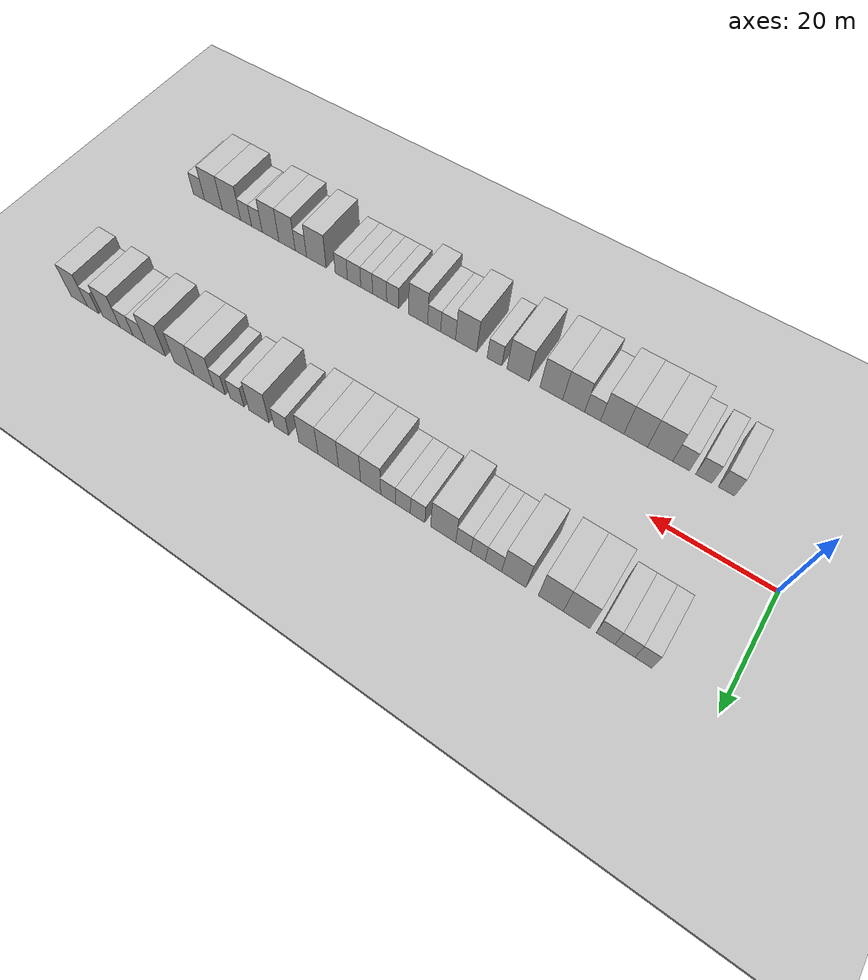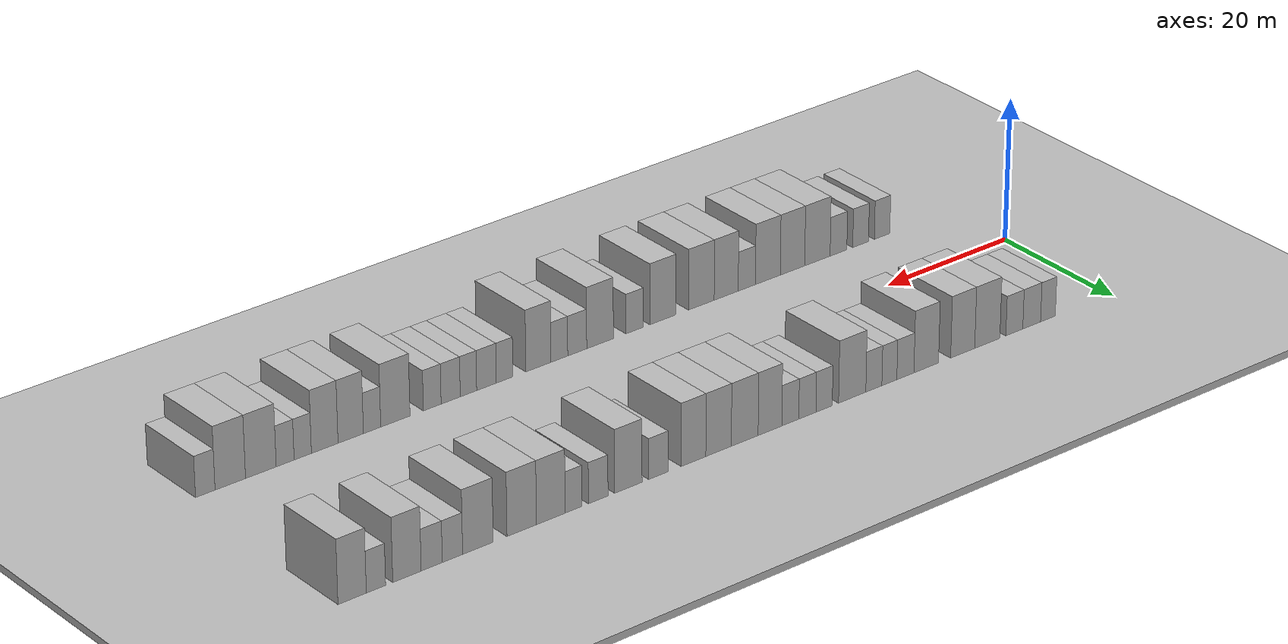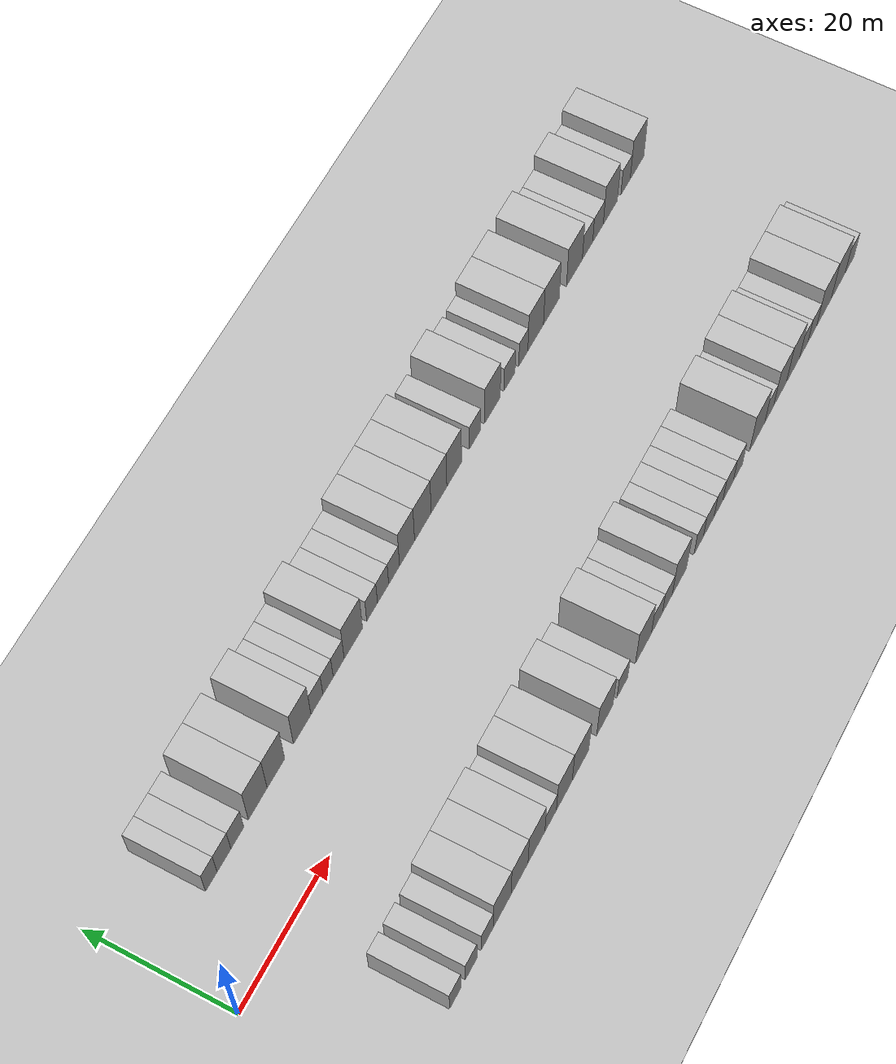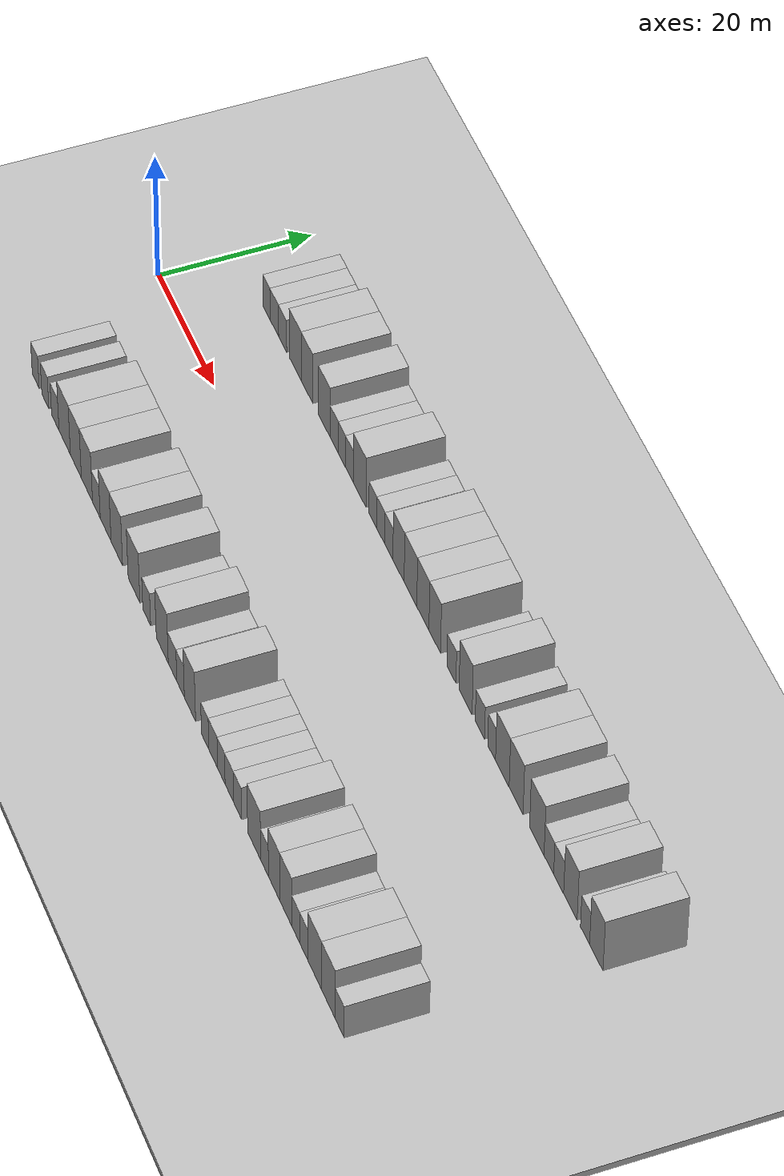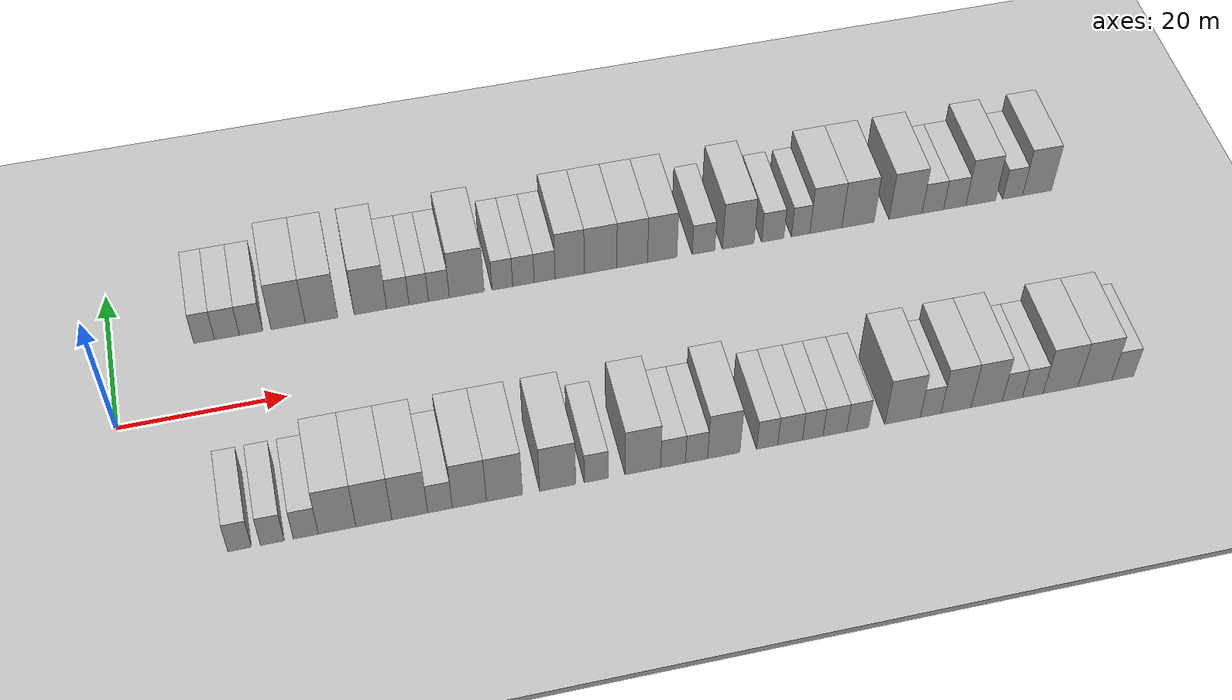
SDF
<sdf version="1.6">
 <world name="default">
  <include><name>ground_plane_1</name><uri>model://HANNAS_ground_plane</uri></include>
  <include>
   <name>ground_plane_2</name>
   <uri>model://HANNAS_ground_plane</uri>
   <pose>100 0 0  0 0 0</pose>
  </include>
  <model name="building_1">
   <static>1</static>
   <pose>11.2514 15.0000 0 0.000000 0.000000 1.570796</pose>
   <link name="link">
    <pose>0 0 3.00 0 0 0</pose>
    <collision name="collision"><geometry><box><size>10.0000 2.5029 6.0000</size></box></geometry></collision>
    <visual name="visual">
     <cast_shadows>0</cast_shadows>
     <geometry><box><size>10.0000 2.5029 6.0000</size></box></geometry>
     <material>
      <script>
       <uri>model://HANNAS_wall/materials/scripts</uri>
       <uri>model://HANNAS_wall/materials/textures</uri>
       <name>vrc/HANNAS_wall</name>
      </script>
     </material>
    </visual>
   </link>
  </model>
  <model name="building_2">
   <static>1</static>
   <pose>14.0023 15.0000 0 0.000000 0.000000 1.570796</pose>
   <link name="link">
    <pose>0 0 3.00 0 0 0</pose>
    <collision name="collision"><geometry><box><size>10.0000 2.9989 6.0000</size></box></geometry></collision>
    <visual name="visual">
     <cast_shadows>0</cast_shadows>
     <geometry><box><size>10.0000 2.9989 6.0000</size></box></geometry>
     <material>
      <script>
       <uri>model://HANNAS_wall/materials/scripts</uri>
       <uri>model://HANNAS_wall/materials/textures</uri>
       <name>vrc/HANNAS_wall</name>
      </script>
     </material>
    </visual>
   </link>
  </model>
  <model name="building_3">
   <static>1</static>
   <pose>16.9239 15.0000 0 0.000000 0.000000 1.570796</pose>
   <link name="link">
    <pose>0 0 3.00 0 0 0</pose>
    <collision name="collision"><geometry><box><size>10.0000 2.8441 6.0000</size></box></geometry></collision>
    <visual name="visual">
     <cast_shadows>0</cast_shadows>
     <geometry><box><size>10.0000 2.8441 6.0000</size></box></geometry>
     <material>
      <script>
       <uri>model://HANNAS_wall/materials/scripts</uri>
       <uri>model://HANNAS_wall/materials/textures</uri>
       <name>vrc/HANNAS_wall</name>
      </script>
     </material>
    </visual>
   </link>
  </model>
  <model name="building_4">
   <static>1</static>
   <pose>21.4435 15.0000 0 0.000000 0.000000 1.570796</pose>
   <link name="link">
    <pose>0 0 4.50 0 0 0</pose>
    <collision name="collision"><geometry><box><size>10.0000 4.1951 9.0000</size></box></geometry></collision>
    <visual name="visual">
     <cast_shadows>0</cast_shadows>
     <geometry><box><size>10.0000 4.1951 9.0000</size></box></geometry>
     <material>
      <script>
       <uri>model://HANNAS_wall/materials/scripts</uri>
       <uri>model://HANNAS_wall/materials/textures</uri>
       <name>vrc/HANNAS_wall</name>
      </script>
     </material>
    </visual>
   </link>
  </model>
  <model name="building_5">
   <static>1</static>
   <pose>25.5285 15.0000 0 0.000000 0.000000 1.570796</pose>
   <link name="link">
    <pose>0 0 4.50 0 0 0</pose>
    <collision name="collision"><geometry><box><size>10.0000 3.9750 9.0000</size></box></geometry></collision>
    <visual name="visual">
     <cast_shadows>0</cast_shadows>
     <geometry><box><size>10.0000 3.9750 9.0000</size></box></geometry>
     <material>
      <script>
       <uri>model://HANNAS_wall/materials/scripts</uri>
       <uri>model://HANNAS_wall/materials/textures</uri>
       <name>vrc/HANNAS_wall</name>
      </script>
     </material>
    </visual>
   </link>
  </model>
  <model name="building_6">
   <static>1</static>
   <pose>31.5260 15.0000 0 0.000000 0.000000 1.570796</pose>
   <link name="link">
    <pose>0 0 4.50 0 0 0</pose>
    <collision name="collision"><geometry><box><size>10.0000 4.0201 9.0000</size></box></geometry></collision>
    <visual name="visual">
     <cast_shadows>0</cast_shadows>
     <geometry><box><size>10.0000 4.0201 9.0000</size></box></geometry>
     <material>
      <script>
       <uri>model://HANNAS_wall/materials/scripts</uri>
       <uri>model://HANNAS_wall/materials/textures</uri>
       <name>vrc/HANNAS_wall</name>
      </script>
     </material>
    </visual>
   </link>
  </model>
  <model name="building_7">
   <static>1</static>
   <pose>34.9230 15.0000 0 0.000000 0.000000 1.570796</pose>
   <link name="link">
    <pose>0 0 3.00 0 0 0</pose>
    <collision name="collision"><geometry><box><size>10.0000 2.7737 6.0000</size></box></geometry></collision>
    <visual name="visual">
     <cast_shadows>0</cast_shadows>
     <geometry><box><size>10.0000 2.7737 6.0000</size></box></geometry>
     <material>
      <script>
       <uri>model://HANNAS_wall/materials/scripts</uri>
       <uri>model://HANNAS_wall/materials/textures</uri>
       <name>vrc/HANNAS_wall</name>
      </script>
     </material>
    </visual>
   </link>
  </model>
  <model name="building_8">
   <static>1</static>
   <pose>37.5219 15.0000 0 0.000000 0.000000 1.570796</pose>
   <link name="link">
    <pose>0 0 3.00 0 0 0</pose>
    <collision name="collision"><geometry><box><size>10.0000 2.4242 6.0000</size></box></geometry></collision>
    <visual name="visual">
     <cast_shadows>0</cast_shadows>
     <geometry><box><size>10.0000 2.4242 6.0000</size></box></geometry>
     <material>
      <script>
       <uri>model://HANNAS_wall/materials/scripts</uri>
       <uri>model://HANNAS_wall/materials/textures</uri>
       <name>vrc/HANNAS_wall</name>
      </script>
     </material>
    </visual>
   </link>
  </model>
  <model name="building_9">
   <static>1</static>
   <pose>40.0258 15.0000 0 0.000000 0.000000 1.570796</pose>
   <link name="link">
    <pose>0 0 3.00 0 0 0</pose>
    <collision name="collision"><geometry><box><size>10.0000 2.5834 6.0000</size></box></geometry></collision>
    <visual name="visual">
     <cast_shadows>0</cast_shadows>
     <geometry><box><size>10.0000 2.5834 6.0000</size></box></geometry>
     <material>
      <script>
       <uri>model://HANNAS_wall/materials/scripts</uri>
       <uri>model://HANNAS_wall/materials/textures</uri>
       <name>vrc/HANNAS_wall</name>
      </script>
     </material>
    </visual>
   </link>
  </model>
  <model name="building_10">
   <static>1</static>
   <pose>43.4983 15.0000 0 0.000000 0.000000 1.570796</pose>
   <link name="link">
    <pose>0 0 4.50 0 0 0</pose>
    <collision name="collision"><geometry><box><size>10.0000 4.3616 9.0000</size></box></geometry></collision>
    <visual name="visual">
     <cast_shadows>0</cast_shadows>
     <geometry><box><size>10.0000 4.3616 9.0000</size></box></geometry>
     <material>
      <script>
       <uri>model://HANNAS_wall/materials/scripts</uri>
       <uri>model://HANNAS_wall/materials/textures</uri>
       <name>vrc/HANNAS_wall</name>
      </script>
     </material>
    </visual>
   </link>
  </model>
  <model name="building_11">
   <static>1</static>
   <pose>47.9770 15.0000 0 0.000000 0.000000 1.570796</pose>
   <link name="link">
    <pose>0 0 3.00 0 0 0</pose>
    <collision name="collision"><geometry><box><size>10.0000 2.5957 6.0000</size></box></geometry></collision>
    <visual name="visual">
     <cast_shadows>0</cast_shadows>
     <geometry><box><size>10.0000 2.5957 6.0000</size></box></geometry>
     <material>
      <script>
       <uri>model://HANNAS_wall/materials/scripts</uri>
       <uri>model://HANNAS_wall/materials/textures</uri>
       <name>vrc/HANNAS_wall</name>
      </script>
     </material>
    </visual>
   </link>
  </model>
  <model name="building_12">
   <static>1</static>
   <pose>50.6294 15.0000 0 0.000000 0.000000 1.570796</pose>
   <link name="link">
    <pose>0 0 3.00 0 0 0</pose>
    <collision name="collision"><geometry><box><size>10.0000 2.7092 6.0000</size></box></geometry></collision>
    <visual name="visual">
     <cast_shadows>0</cast_shadows>
     <geometry><box><size>10.0000 2.7092 6.0000</size></box></geometry>
     <material>
      <script>
       <uri>model://HANNAS_wall/materials/scripts</uri>
       <uri>model://HANNAS_wall/materials/textures</uri>
       <name>vrc/HANNAS_wall</name>
      </script>
     </material>
    </visual>
   </link>
  </model>
  <model name="building_13">
   <static>1</static>
   <pose>53.3160 15.0000 0 0.000000 0.000000 1.570796</pose>
   <link name="link">
    <pose>0 0 3.00 0 0 0</pose>
    <collision name="collision"><geometry><box><size>10.0000 2.6641 6.0000</size></box></geometry></collision>
    <visual name="visual">
     <cast_shadows>0</cast_shadows>
     <geometry><box><size>10.0000 2.6641 6.0000</size></box></geometry>
     <material>
      <script>
       <uri>model://HANNAS_wall/materials/scripts</uri>
       <uri>model://HANNAS_wall/materials/textures</uri>
       <name>vrc/HANNAS_wall</name>
      </script>
     </material>
    </visual>
   </link>
  </model>
  <model name="building_14">
   <static>1</static>
   <pose>56.5004 15.0000 0 0.000000 0.000000 1.570796</pose>
   <link name="link">
    <pose>0 0 4.50 0 0 0</pose>
    <collision name="collision"><geometry><box><size>10.0000 3.7046 9.0000</size></box></geometry></collision>
    <visual name="visual">
     <cast_shadows>0</cast_shadows>
     <geometry><box><size>10.0000 3.7046 9.0000</size></box></geometry>
     <material>
      <script>
       <uri>model://HANNAS_wall/materials/scripts</uri>
       <uri>model://HANNAS_wall/materials/textures</uri>
       <name>vrc/HANNAS_wall</name>
      </script>
     </material>
    </visual>
   </link>
  </model>
  <model name="building_15">
   <static>1</static>
   <pose>60.4283 15.0000 0 0.000000 0.000000 1.570796</pose>
   <link name="link">
    <pose>0 0 4.50 0 0 0</pose>
    <collision name="collision"><geometry><box><size>10.0000 4.1512 9.0000</size></box></geometry></collision>
    <visual name="visual">
     <cast_shadows>0</cast_shadows>
     <geometry><box><size>10.0000 4.1512 9.0000</size></box></geometry>
     <material>
      <script>
       <uri>model://HANNAS_wall/materials/scripts</uri>
       <uri>model://HANNAS_wall/materials/textures</uri>
       <name>vrc/HANNAS_wall</name>
      </script>
     </material>
    </visual>
   </link>
  </model>
  <model name="building_16">
   <static>1</static>
   <pose>64.4689 15.0000 0 0.000000 0.000000 1.570796</pose>
   <link name="link">
    <pose>0 0 4.50 0 0 0</pose>
    <collision name="collision"><geometry><box><size>10.0000 3.9300 9.0000</size></box></geometry></collision>
    <visual name="visual">
     <cast_shadows>0</cast_shadows>
     <geometry><box><size>10.0000 3.9300 9.0000</size></box></geometry>
     <material>
      <script>
       <uri>model://HANNAS_wall/materials/scripts</uri>
       <uri>model://HANNAS_wall/materials/textures</uri>
       <name>vrc/HANNAS_wall</name>
      </script>
     </material>
    </visual>
   </link>
  </model>
  <model name="building_17">
   <static>1</static>
   <pose>68.3168 15.0000 0 0.000000 0.000000 1.570796</pose>
   <link name="link">
    <pose>0 0 4.50 0 0 0</pose>
    <collision name="collision"><geometry><box><size>10.0000 3.7660 9.0000</size></box></geometry></collision>
    <visual name="visual">
     <cast_shadows>0</cast_shadows>
     <geometry><box><size>10.0000 3.7660 9.0000</size></box></geometry>
     <material>
      <script>
       <uri>model://HANNAS_wall/materials/scripts</uri>
       <uri>model://HANNAS_wall/materials/textures</uri>
       <name>vrc/HANNAS_wall</name>
      </script>
     </material>
    </visual>
   </link>
  </model>
  <model name="building_18">
   <static>1</static>
   <pose>73.6593 15.0000 0 0.000000 0.000000 1.570796</pose>
   <link name="link">
    <pose>0 0 3.00 0 0 0</pose>
    <collision name="collision"><geometry><box><size>10.0000 2.9189 6.0000</size></box></geometry></collision>
    <visual name="visual">
     <cast_shadows>0</cast_shadows>
     <geometry><box><size>10.0000 2.9189 6.0000</size></box></geometry>
     <material>
      <script>
       <uri>model://HANNAS_wall/materials/scripts</uri>
       <uri>model://HANNAS_wall/materials/textures</uri>
       <name>vrc/HANNAS_wall</name>
      </script>
     </material>
    </visual>
   </link>
  </model>
  <model name="building_19">
   <static>1</static>
   <pose>78.1737 15.0000 0 0.000000 0.000000 1.570796</pose>
   <link name="link">
    <pose>0 0 4.50 0 0 0</pose>
    <collision name="collision"><geometry><box><size>10.0000 4.1099 9.0000</size></box></geometry></collision>
    <visual name="visual">
     <cast_shadows>0</cast_shadows>
     <geometry><box><size>10.0000 4.1099 9.0000</size></box></geometry>
     <material>
      <script>
       <uri>model://HANNAS_wall/materials/scripts</uri>
       <uri>model://HANNAS_wall/materials/textures</uri>
       <name>vrc/HANNAS_wall</name>
      </script>
     </material>
    </visual>
   </link>
  </model>
  <model name="building_20">
   <static>1</static>
   <pose>82.6827 15.0000 0 0.000000 0.000000 1.570796</pose>
   <link name="link">
    <pose>0 0 3.00 0 0 0</pose>
    <collision name="collision"><geometry><box><size>10.0000 2.9082 6.0000</size></box></geometry></collision>
    <visual name="visual">
     <cast_shadows>0</cast_shadows>
     <geometry><box><size>10.0000 2.9082 6.0000</size></box></geometry>
     <material>
      <script>
       <uri>model://HANNAS_wall/materials/scripts</uri>
       <uri>model://HANNAS_wall/materials/textures</uri>
       <name>vrc/HANNAS_wall</name>
      </script>
     </material>
    </visual>
   </link>
  </model>
  <model name="building_21">
   <static>1</static>
   <pose>86.3541 15.0000 0 0.000000 0.000000 1.570796</pose>
   <link name="link">
    <pose>0 0 3.00 0 0 0</pose>
    <collision name="collision"><geometry><box><size>10.0000 2.4345 6.0000</size></box></geometry></collision>
    <visual name="visual">
     <cast_shadows>0</cast_shadows>
     <geometry><box><size>10.0000 2.4345 6.0000</size></box></geometry>
     <material>
      <script>
       <uri>model://HANNAS_wall/materials/scripts</uri>
       <uri>model://HANNAS_wall/materials/textures</uri>
       <name>vrc/HANNAS_wall</name>
      </script>
     </material>
    </visual>
   </link>
  </model>
  <model name="building_22">
   <static>1</static>
   <pose>89.6806 15.0000 0 0.000000 0.000000 1.570796</pose>
   <link name="link">
    <pose>0 0 4.50 0 0 0</pose>
    <collision name="collision"><geometry><box><size>10.0000 4.2186 9.0000</size></box></geometry></collision>
    <visual name="visual">
     <cast_shadows>0</cast_shadows>
     <geometry><box><size>10.0000 4.2186 9.0000</size></box></geometry>
     <material>
      <script>
       <uri>model://HANNAS_wall/materials/scripts</uri>
       <uri>model://HANNAS_wall/materials/textures</uri>
       <name>vrc/HANNAS_wall</name>
      </script>
     </material>
    </visual>
   </link>
  </model>
  <model name="building_23">
   <static>1</static>
   <pose>93.9344 15.0000 0 0.000000 0.000000 1.570796</pose>
   <link name="link">
    <pose>0 0 4.50 0 0 0</pose>
    <collision name="collision"><geometry><box><size>10.0000 4.2889 9.0000</size></box></geometry></collision>
    <visual name="visual">
     <cast_shadows>0</cast_shadows>
     <geometry><box><size>10.0000 4.2889 9.0000</size></box></geometry>
     <material>
      <script>
       <uri>model://HANNAS_wall/materials/scripts</uri>
       <uri>model://HANNAS_wall/materials/textures</uri>
       <name>vrc/HANNAS_wall</name>
      </script>
     </material>
    </visual>
   </link>
  </model>
  <model name="building_24">
   <static>1</static>
   <pose>100.2766 15.0000 0 0.000000 0.000000 1.570796</pose>
   <link name="link">
    <pose>0 0 4.50 0 0 0</pose>
    <collision name="collision"><geometry><box><size>10.0000 4.3954 9.0000</size></box></geometry></collision>
    <visual name="visual">
     <cast_shadows>0</cast_shadows>
     <geometry><box><size>10.0000 4.3954 9.0000</size></box></geometry>
     <material>
      <script>
       <uri>model://HANNAS_wall/materials/scripts</uri>
       <uri>model://HANNAS_wall/materials/textures</uri>
       <name>vrc/HANNAS_wall</name>
      </script>
     </material>
    </visual>
   </link>
  </model>
  <model name="building_25">
   <static>1</static>
   <pose>103.9257 15.0000 0 0.000000 0.000000 1.570796</pose>
   <link name="link">
    <pose>0 0 3.00 0 0 0</pose>
    <collision name="collision"><geometry><box><size>10.0000 2.9029 6.0000</size></box></geometry></collision>
    <visual name="visual">
     <cast_shadows>0</cast_shadows>
     <geometry><box><size>10.0000 2.9029 6.0000</size></box></geometry>
     <material>
      <script>
       <uri>model://HANNAS_wall/materials/scripts</uri>
       <uri>model://HANNAS_wall/materials/textures</uri>
       <name>vrc/HANNAS_wall</name>
      </script>
     </material>
    </visual>
   </link>
  </model>
  <model name="building_26">
   <static>1</static>
   <pose>106.8754 15.0000 0 0.000000 0.000000 1.570796</pose>
   <link name="link">
    <pose>0 0 3.00 0 0 0</pose>
    <collision name="collision"><geometry><box><size>10.0000 2.9966 6.0000</size></box></geometry></collision>
    <visual name="visual">
     <cast_shadows>0</cast_shadows>
     <geometry><box><size>10.0000 2.9966 6.0000</size></box></geometry>
     <material>
      <script>
       <uri>model://HANNAS_wall/materials/scripts</uri>
       <uri>model://HANNAS_wall/materials/textures</uri>
       <name>vrc/HANNAS_wall</name>
      </script>
     </material>
    </visual>
   </link>
  </model>
  <model name="building_27">
   <static>1</static>
   <pose>110.3782 15.0000 0 0.000000 0.000000 1.570796</pose>
   <link name="link">
    <pose>0 0 4.50 0 0 0</pose>
    <collision name="collision"><geometry><box><size>10.0000 4.0090 9.0000</size></box></geometry></collision>
    <visual name="visual">
     <cast_shadows>0</cast_shadows>
     <geometry><box><size>10.0000 4.0090 9.0000</size></box></geometry>
     <material>
      <script>
       <uri>model://HANNAS_wall/materials/scripts</uri>
       <uri>model://HANNAS_wall/materials/textures</uri>
       <name>vrc/HANNAS_wall</name>
      </script>
     </material>
    </visual>
   </link>
  </model>
  <model name="building_28">
   <static>1</static>
   <pose>114.7304 15.0000 0 0.000000 0.000000 1.570796</pose>
   <link name="link">
    <pose>0 0 3.00 0 0 0</pose>
    <collision name="collision"><geometry><box><size>10.0000 2.6954 6.0000</size></box></geometry></collision>
    <visual name="visual">
     <cast_shadows>0</cast_shadows>
     <geometry><box><size>10.0000 2.6954 6.0000</size></box></geometry>
     <material>
      <script>
       <uri>model://HANNAS_wall/materials/scripts</uri>
       <uri>model://HANNAS_wall/materials/textures</uri>
       <name>vrc/HANNAS_wall</name>
      </script>
     </material>
    </visual>
   </link>
  </model>
  <model name="building_29">
   <static>1</static>
   <pose>118.0491 15.0000 0 0.000000 0.000000 1.570796</pose>
   <link name="link">
    <pose>0 0 4.50 0 0 0</pose>
    <collision name="collision"><geometry><box><size>10.0000 3.9418 9.0000</size></box></geometry></collision>
    <visual name="visual">
     <cast_shadows>0</cast_shadows>
     <geometry><box><size>10.0000 3.9418 9.0000</size></box></geometry>
     <material>
      <script>
       <uri>model://HANNAS_wall/materials/scripts</uri>
       <uri>model://HANNAS_wall/materials/textures</uri>
       <name>vrc/HANNAS_wall</name>
      </script>
     </material>
    </visual>
   </link>
  </model>
  <model name="building_61">
   <static>1</static>
   <pose>12.3167 -15.0000 0 0.000000 0.000000 1.570796</pose>
   <link name="link">
    <pose>0 0 3.00 0 0 0</pose>
    <collision name="collision"><geometry><box><size>10.0000 2.6335 6.0000</size></box></geometry></collision>
    <visual name="visual">
     <cast_shadows>0</cast_shadows>
     <geometry><box><size>10.0000 2.6335 6.0000</size></box></geometry>
     <material>
      <script>
       <uri>model://HANNAS_wall/materials/scripts</uri>
       <uri>model://HANNAS_wall/materials/textures</uri>
       <name>vrc/HANNAS_wall</name>
      </script>
     </material>
    </visual>
   </link>
  </model>
  <model name="building_62">
   <static>1</static>
   <pose>15.9717 -15.0000 0 0.000000 0.000000 1.570796</pose>
   <link name="link">
    <pose>0 0 3.00 0 0 0</pose>
    <collision name="collision"><geometry><box><size>10.0000 2.6764 6.0000</size></box></geometry></collision>
    <visual name="visual">
     <cast_shadows>0</cast_shadows>
     <geometry><box><size>10.0000 2.6764 6.0000</size></box></geometry>
     <material>
      <script>
       <uri>model://HANNAS_wall/materials/scripts</uri>
       <uri>model://HANNAS_wall/materials/textures</uri>
       <name>vrc/HANNAS_wall</name>
      </script>
     </material>
    </visual>
   </link>
  </model>
  <model name="building_63">
   <static>1</static>
   <pose>19.7191 -15.0000 0 0.000000 0.000000 1.570796</pose>
   <link name="link">
    <pose>0 0 3.00 0 0 0</pose>
    <collision name="collision"><geometry><box><size>10.0000 2.8184 6.0000</size></box></geometry></collision>
    <visual name="visual">
     <cast_shadows>0</cast_shadows>
     <geometry><box><size>10.0000 2.8184 6.0000</size></box></geometry>
     <material>
      <script>
       <uri>model://HANNAS_wall/materials/scripts</uri>
       <uri>model://HANNAS_wall/materials/textures</uri>
       <name>vrc/HANNAS_wall</name>
      </script>
     </material>
    </visual>
   </link>
  </model>
  <model name="building_64">
   <static>1</static>
   <pose>23.2573 -15.0000 0 0.000000 0.000000 1.570796</pose>
   <link name="link">
    <pose>0 0 4.50 0 0 0</pose>
    <collision name="collision"><geometry><box><size>10.0000 4.2580 9.0000</size></box></geometry></collision>
    <visual name="visual">
     <cast_shadows>0</cast_shadows>
     <geometry><box><size>10.0000 4.2580 9.0000</size></box></geometry>
     <material>
      <script>
       <uri>model://HANNAS_wall/materials/scripts</uri>
       <uri>model://HANNAS_wall/materials/textures</uri>
       <name>vrc/HANNAS_wall</name>
      </script>
     </material>
    </visual>
   </link>
  </model>
  <model name="building_65">
   <static>1</static>
   <pose>27.4177 -15.0000 0 0.000000 0.000000 1.570796</pose>
   <link name="link">
    <pose>0 0 4.50 0 0 0</pose>
    <collision name="collision"><geometry><box><size>10.0000 4.0628 9.0000</size></box></geometry></collision>
    <visual name="visual">
     <cast_shadows>0</cast_shadows>
     <geometry><box><size>10.0000 4.0628 9.0000</size></box></geometry>
     <material>
      <script>
       <uri>model://HANNAS_wall/materials/scripts</uri>
       <uri>model://HANNAS_wall/materials/textures</uri>
       <name>vrc/HANNAS_wall</name>
      </script>
     </material>
    </visual>
   </link>
  </model>
  <model name="building_66">
   <static>1</static>
   <pose>31.5006 -15.0000 0 0.000000 0.000000 1.570796</pose>
   <link name="link">
    <pose>0 0 4.50 0 0 0</pose>
    <collision name="collision"><geometry><box><size>10.0000 4.1030 9.0000</size></box></geometry></collision>
    <visual name="visual">
     <cast_shadows>0</cast_shadows>
     <geometry><box><size>10.0000 4.1030 9.0000</size></box></geometry>
     <material>
      <script>
       <uri>model://HANNAS_wall/materials/scripts</uri>
       <uri>model://HANNAS_wall/materials/textures</uri>
       <name>vrc/HANNAS_wall</name>
      </script>
     </material>
    </visual>
   </link>
  </model>
  <model name="building_67">
   <static>1</static>
   <pose>34.9630 -15.0000 0 0.000000 0.000000 1.570796</pose>
   <link name="link">
    <pose>0 0 3.00 0 0 0</pose>
    <collision name="collision"><geometry><box><size>10.0000 2.8217 6.0000</size></box></geometry></collision>
    <visual name="visual">
     <cast_shadows>0</cast_shadows>
     <geometry><box><size>10.0000 2.8217 6.0000</size></box></geometry>
     <material>
      <script>
       <uri>model://HANNAS_wall/materials/scripts</uri>
       <uri>model://HANNAS_wall/materials/textures</uri>
       <name>vrc/HANNAS_wall</name>
      </script>
     </material>
    </visual>
   </link>
  </model>
  <model name="building_68">
   <static>1</static>
   <pose>38.3397 -15.0000 0 0.000000 0.000000 1.570796</pose>
   <link name="link">
    <pose>0 0 4.50 0 0 0</pose>
    <collision name="collision"><geometry><box><size>10.0000 3.9317 9.0000</size></box></geometry></collision>
    <visual name="visual">
     <cast_shadows>0</cast_shadows>
     <geometry><box><size>10.0000 3.9317 9.0000</size></box></geometry>
     <material>
      <script>
       <uri>model://HANNAS_wall/materials/scripts</uri>
       <uri>model://HANNAS_wall/materials/textures</uri>
       <name>vrc/HANNAS_wall</name>
      </script>
     </material>
    </visual>
   </link>
  </model>
  <model name="building_69">
   <static>1</static>
   <pose>42.3876 -15.0000 0 0.000000 0.000000 1.570796</pose>
   <link name="link">
    <pose>0 0 4.50 0 0 0</pose>
    <collision name="collision"><geometry><box><size>10.0000 4.1641 9.0000</size></box></geometry></collision>
    <visual name="visual">
     <cast_shadows>0</cast_shadows>
     <geometry><box><size>10.0000 4.1641 9.0000</size></box></geometry>
     <material>
      <script>
       <uri>model://HANNAS_wall/materials/scripts</uri>
       <uri>model://HANNAS_wall/materials/textures</uri>
       <name>vrc/HANNAS_wall</name>
      </script>
     </material>
    </visual>
   </link>
  </model>
  <model name="building_70">
   <static>1</static>
   <pose>48.5709 -15.0000 0 0.000000 0.000000 1.570796</pose>
   <link name="link">
    <pose>0 0 4.50 0 0 0</pose>
    <collision name="collision"><geometry><box><size>10.0000 4.2025 9.0000</size></box></geometry></collision>
    <visual name="visual">
     <cast_shadows>0</cast_shadows>
     <geometry><box><size>10.0000 4.2025 9.0000</size></box></geometry>
     <material>
      <script>
       <uri>model://HANNAS_wall/materials/scripts</uri>
       <uri>model://HANNAS_wall/materials/textures</uri>
       <name>vrc/HANNAS_wall</name>
      </script>
     </material>
    </visual>
   </link>
  </model>
  <model name="building_71">
   <static>1</static>
   <pose>53.0681 -15.0000 0 0.000000 0.000000 1.570796</pose>
   <link name="link">
    <pose>0 0 3.00 0 0 0</pose>
    <collision name="collision"><geometry><box><size>10.0000 2.7918 6.0000</size></box></geometry></collision>
    <visual name="visual">
     <cast_shadows>0</cast_shadows>
     <geometry><box><size>10.0000 2.7918 6.0000</size></box></geometry>
     <material>
      <script>
       <uri>model://HANNAS_wall/materials/scripts</uri>
       <uri>model://HANNAS_wall/materials/textures</uri>
       <name>vrc/HANNAS_wall</name>
      </script>
     </material>
    </visual>
   </link>
  </model>
  <model name="building_72">
   <static>1</static>
   <pose>58.5598 -15.0000 0 0.000000 0.000000 1.570796</pose>
   <link name="link">
    <pose>0 0 4.50 0 0 0</pose>
    <collision name="collision"><geometry><box><size>10.0000 4.1917 9.0000</size></box></geometry></collision>
    <visual name="visual">
     <cast_shadows>0</cast_shadows>
     <geometry><box><size>10.0000 4.1917 9.0000</size></box></geometry>
     <material>
      <script>
       <uri>model://HANNAS_wall/materials/scripts</uri>
       <uri>model://HANNAS_wall/materials/textures</uri>
       <name>vrc/HANNAS_wall</name>
      </script>
     </material>
    </visual>
   </link>
  </model>
  <model name="building_73">
   <static>1</static>
   <pose>62.1411 -15.0000 0 0.000000 0.000000 1.570796</pose>
   <link name="link">
    <pose>0 0 3.00 0 0 0</pose>
    <collision name="collision"><geometry><box><size>10.0000 2.9708 6.0000</size></box></geometry></collision>
    <visual name="visual">
     <cast_shadows>0</cast_shadows>
     <geometry><box><size>10.0000 2.9708 6.0000</size></box></geometry>
     <material>
      <script>
       <uri>model://HANNAS_wall/materials/scripts</uri>
       <uri>model://HANNAS_wall/materials/textures</uri>
       <name>vrc/HANNAS_wall</name>
      </script>
     </material>
    </visual>
   </link>
  </model>
  <model name="building_74">
   <static>1</static>
   <pose>64.9349 -15.0000 0 0.000000 0.000000 1.570796</pose>
   <link name="link">
    <pose>0 0 3.00 0 0 0</pose>
    <collision name="collision"><geometry><box><size>10.0000 2.6167 6.0000</size></box></geometry></collision>
    <visual name="visual">
     <cast_shadows>0</cast_shadows>
     <geometry><box><size>10.0000 2.6167 6.0000</size></box></geometry>
     <material>
      <script>
       <uri>model://HANNAS_wall/materials/scripts</uri>
       <uri>model://HANNAS_wall/materials/textures</uri>
       <name>vrc/HANNAS_wall</name>
      </script>
     </material>
    </visual>
   </link>
  </model>
  <model name="building_75">
   <static>1</static>
   <pose>68.1829 -15.0000 0 0.000000 0.000000 1.570796</pose>
   <link name="link">
    <pose>0 0 4.50 0 0 0</pose>
    <collision name="collision"><geometry><box><size>10.0000 3.8792 9.0000</size></box></geometry></collision>
    <visual name="visual">
     <cast_shadows>0</cast_shadows>
     <geometry><box><size>10.0000 3.8792 9.0000</size></box></geometry>
     <material>
      <script>
       <uri>model://HANNAS_wall/materials/scripts</uri>
       <uri>model://HANNAS_wall/materials/textures</uri>
       <name>vrc/HANNAS_wall</name>
      </script>
     </material>
    </visual>
   </link>
  </model>
  <model name="building_76">
   <static>1</static>
   <pose>73.3926 -15.0000 0 0.000000 0.000000 1.570796</pose>
   <link name="link">
    <pose>0 0 3.00 0 0 0</pose>
    <collision name="collision"><geometry><box><size>10.0000 2.5403 6.0000</size></box></geometry></collision>
    <visual name="visual">
     <cast_shadows>0</cast_shadows>
     <geometry><box><size>10.0000 2.5403 6.0000</size></box></geometry>
     <material>
      <script>
       <uri>model://HANNAS_wall/materials/scripts</uri>
       <uri>model://HANNAS_wall/materials/textures</uri>
       <name>vrc/HANNAS_wall</name>
      </script>
     </material>
    </visual>
   </link>
  </model>
  <model name="building_77">
   <static>1</static>
   <pose>76.1578 -15.0000 0 0.000000 0.000000 1.570796</pose>
   <link name="link">
    <pose>0 0 3.00 0 0 0</pose>
    <collision name="collision"><geometry><box><size>10.0000 2.9901 6.0000</size></box></geometry></collision>
    <visual name="visual">
     <cast_shadows>0</cast_shadows>
     <geometry><box><size>10.0000 2.9901 6.0000</size></box></geometry>
     <material>
      <script>
       <uri>model://HANNAS_wall/materials/scripts</uri>
       <uri>model://HANNAS_wall/materials/textures</uri>
       <name>vrc/HANNAS_wall</name>
      </script>
     </material>
    </visual>
   </link>
  </model>
  <model name="building_78">
   <static>1</static>
   <pose>78.8990 -15.0000 0 0.000000 0.000000 1.570796</pose>
   <link name="link">
    <pose>0 0 3.00 0 0 0</pose>
    <collision name="collision"><geometry><box><size>10.0000 2.4922 6.0000</size></box></geometry></collision>
    <visual name="visual">
     <cast_shadows>0</cast_shadows>
     <geometry><box><size>10.0000 2.4922 6.0000</size></box></geometry>
     <material>
      <script>
       <uri>model://HANNAS_wall/materials/scripts</uri>
       <uri>model://HANNAS_wall/materials/textures</uri>
       <name>vrc/HANNAS_wall</name>
      </script>
     </material>
    </visual>
   </link>
  </model>
  <model name="building_79">
   <static>1</static>
   <pose>81.5900 -15.0000 0 0.000000 0.000000 1.570796</pose>
   <link name="link">
    <pose>0 0 3.00 0 0 0</pose>
    <collision name="collision"><geometry><box><size>10.0000 2.8898 6.0000</size></box></geometry></collision>
    <visual name="visual">
     <cast_shadows>0</cast_shadows>
     <geometry><box><size>10.0000 2.8898 6.0000</size></box></geometry>
     <material>
      <script>
       <uri>model://HANNAS_wall/materials/scripts</uri>
       <uri>model://HANNAS_wall/materials/textures</uri>
       <name>vrc/HANNAS_wall</name>
      </script>
     </material>
    </visual>
   </link>
  </model>
  <model name="building_80">
   <static>1</static>
   <pose>84.3654 -15.0000 0 0.000000 0.000000 1.570796</pose>
   <link name="link">
    <pose>0 0 3.00 0 0 0</pose>
    <collision name="collision"><geometry><box><size>10.0000 2.6610 6.0000</size></box></geometry></collision>
    <visual name="visual">
     <cast_shadows>0</cast_shadows>
     <geometry><box><size>10.0000 2.6610 6.0000</size></box></geometry>
     <material>
      <script>
       <uri>model://HANNAS_wall/materials/scripts</uri>
       <uri>model://HANNAS_wall/materials/textures</uri>
       <name>vrc/HANNAS_wall</name>
      </script>
     </material>
    </visual>
   </link>
  </model>
  <model name="building_81">
   <static>1</static>
   <pose>89.8745 -15.0000 0 0.000000 0.000000 1.570796</pose>
   <link name="link">
    <pose>0 0 4.50 0 0 0</pose>
    <collision name="collision"><geometry><box><size>10.0000 4.3572 9.0000</size></box></geometry></collision>
    <visual name="visual">
     <cast_shadows>0</cast_shadows>
     <geometry><box><size>10.0000 4.3572 9.0000</size></box></geometry>
     <material>
      <script>
       <uri>model://HANNAS_wall/materials/scripts</uri>
       <uri>model://HANNAS_wall/materials/textures</uri>
       <name>vrc/HANNAS_wall</name>
      </script>
     </material>
    </visual>
   </link>
  </model>
  <model name="building_82">
   <static>1</static>
   <pose>93.3296 -15.0000 0 0.000000 0.000000 1.570796</pose>
   <link name="link">
    <pose>0 0 3.00 0 0 0</pose>
    <collision name="collision"><geometry><box><size>10.0000 2.5531 6.0000</size></box></geometry></collision>
    <visual name="visual">
     <cast_shadows>0</cast_shadows>
     <geometry><box><size>10.0000 2.5531 6.0000</size></box></geometry>
     <material>
      <script>
       <uri>model://HANNAS_wall/materials/scripts</uri>
       <uri>model://HANNAS_wall/materials/textures</uri>
       <name>vrc/HANNAS_wall</name>
      </script>
     </material>
    </visual>
   </link>
  </model>
  <model name="building_83">
   <static>1</static>
   <pose>96.4717 -15.0000 0 0.000000 0.000000 1.570796</pose>
   <link name="link">
    <pose>0 0 4.50 0 0 0</pose>
    <collision name="collision"><geometry><box><size>10.0000 3.7310 9.0000</size></box></geometry></collision>
    <visual name="visual">
     <cast_shadows>0</cast_shadows>
     <geometry><box><size>10.0000 3.7310 9.0000</size></box></geometry>
     <material>
      <script>
       <uri>model://HANNAS_wall/materials/scripts</uri>
       <uri>model://HANNAS_wall/materials/textures</uri>
       <name>vrc/HANNAS_wall</name>
      </script>
     </material>
    </visual>
   </link>
  </model>
  <model name="building_84">
   <static>1</static>
   <pose>100.2781 -15.0000 0 0.000000 0.000000 1.570796</pose>
   <link name="link">
    <pose>0 0 4.50 0 0 0</pose>
    <collision name="collision"><geometry><box><size>10.0000 3.8820 9.0000</size></box></geometry></collision>
    <visual name="visual">
     <cast_shadows>0</cast_shadows>
     <geometry><box><size>10.0000 3.8820 9.0000</size></box></geometry>
     <material>
      <script>
       <uri>model://HANNAS_wall/materials/scripts</uri>
       <uri>model://HANNAS_wall/materials/textures</uri>
       <name>vrc/HANNAS_wall</name>
      </script>
     </material>
    </visual>
   </link>
  </model>
  <model name="building_85">
   <static>1</static>
   <pose>103.4728 -15.0000 0 0.000000 0.000000 1.570796</pose>
   <link name="link">
    <pose>0 0 3.00 0 0 0</pose>
    <collision name="collision"><geometry><box><size>10.0000 2.5074 6.0000</size></box></geometry></collision>
    <visual name="visual">
     <cast_shadows>0</cast_shadows>
     <geometry><box><size>10.0000 2.5074 6.0000</size></box></geometry>
     <material>
      <script>
       <uri>model://HANNAS_wall/materials/scripts</uri>
       <uri>model://HANNAS_wall/materials/textures</uri>
       <name>vrc/HANNAS_wall</name>
      </script>
     </material>
    </visual>
   </link>
  </model>
  <model name="building_86">
   <static>1</static>
   <pose>106.0196 -15.0000 0 0.000000 0.000000 1.570796</pose>
   <link name="link">
    <pose>0 0 3.00 0 0 0</pose>
    <collision name="collision"><geometry><box><size>10.0000 2.5862 6.0000</size></box></geometry></collision>
    <visual name="visual">
     <cast_shadows>0</cast_shadows>
     <geometry><box><size>10.0000 2.5862 6.0000</size></box></geometry>
     <material>
      <script>
       <uri>model://HANNAS_wall/materials/scripts</uri>
       <uri>model://HANNAS_wall/materials/textures</uri>
       <name>vrc/HANNAS_wall</name>
      </script>
     </material>
    </visual>
   </link>
  </model>
  <model name="building_87">
   <static>1</static>
   <pose>109.5107 -15.0000 0 0.000000 0.000000 1.570796</pose>
   <link name="link">
    <pose>0 0 4.50 0 0 0</pose>
    <collision name="collision"><geometry><box><size>10.0000 4.3960 9.0000</size></box></geometry></collision>
    <visual name="visual">
     <cast_shadows>0</cast_shadows>
     <geometry><box><size>10.0000 4.3960 9.0000</size></box></geometry>
     <material>
      <script>
       <uri>model://HANNAS_wall/materials/scripts</uri>
       <uri>model://HANNAS_wall/materials/textures</uri>
       <name>vrc/HANNAS_wall</name>
      </script>
     </material>
    </visual>
   </link>
  </model>
  <model name="building_88">
   <static>1</static>
   <pose>113.8752 -15.0000 0 0.000000 0.000000 1.570796</pose>
   <link name="link">
    <pose>0 0 4.50 0 0 0</pose>
    <collision name="collision"><geometry><box><size>10.0000 4.3330 9.0000</size></box></geometry></collision>
    <visual name="visual">
     <cast_shadows>0</cast_shadows>
     <geometry><box><size>10.0000 4.3330 9.0000</size></box></geometry>
     <material>
      <script>
       <uri>model://HANNAS_wall/materials/scripts</uri>
       <uri>model://HANNAS_wall/materials/textures</uri>
       <name>vrc/HANNAS_wall</name>
      </script>
     </material>
    </visual>
   </link>
  </model>
  <model name="building_89">
   <static>1</static>
   <pose>117.4212 -15.0000 0 0.000000 0.000000 1.570796</pose>
   <link name="link">
    <pose>0 0 3.00 0 0 0</pose>
    <collision name="collision"><geometry><box><size>10.0000 2.7589 6.0000</size></box></geometry></collision>
    <visual name="visual">
     <cast_shadows>0</cast_shadows>
     <geometry><box><size>10.0000 2.7589 6.0000</size></box></geometry>
     <material>
      <script>
       <uri>model://HANNAS_wall/materials/scripts</uri>
       <uri>model://HANNAS_wall/materials/textures</uri>
       <name>vrc/HANNAS_wall</name>
      </script>
     </material>
    </visual>
   </link>
  </model>
 </world>
</sdf>
